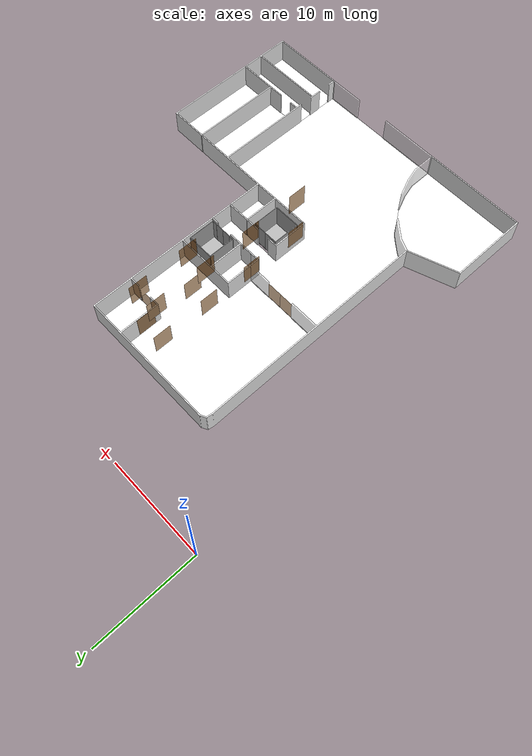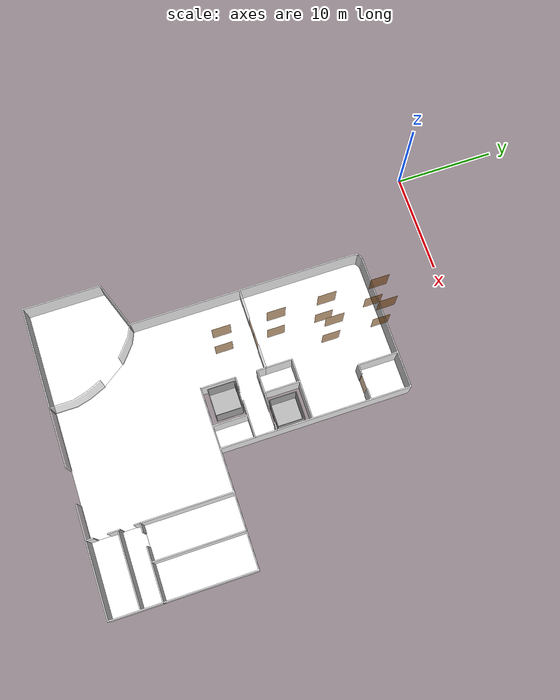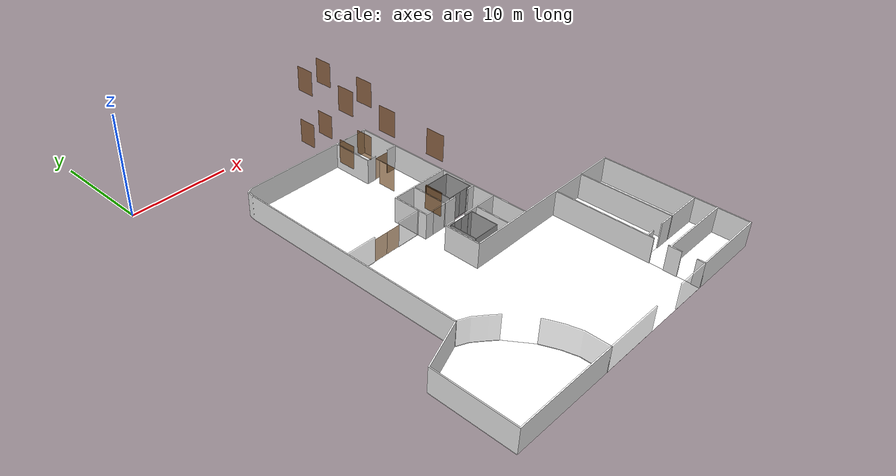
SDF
<sdf version="1.7">
 <world name="world">
  <include><uri>model://sun</uri></include>
  <model name="L1_door2">
   <pose>11.467915973513396 -19.51919626838896 0.0 0 0 3.141592653589793</pose>
   <link name="right">
    <pose>0.7343820334670719 0 1.11 0 0 0</pose>
    <visual name="right_visual">
     <geometry><box><size>1.4587640669341437 0.03 2.2</size></box></geometry>
     <material><ambient>0.5 0.25 0 0.6</ambient><diffuse>0.5 0.25 0 0.6</diffuse></material>
    </visual>
    <collision name="right_collision">
     <geometry><box><size>1.4587640669341437 0.03 2.2</size></box></geometry>
     <surface><contact><collide_bitmask>0x02</collide_bitmask></contact></surface>
    </collision>
    <inertial>
     <mass>50.0</mass>
     <inertia><ixx>20.17041666666667</ixx><iyy>29.033302512409353</iyy><izz>8.87038584574268</izz></inertia>
    </inertial>
   </link>
   <joint name="right_joint" type="prismatic">
    <parent>world</parent>
    <child>right</child>
    <axis>
     <xyz>1 0 0</xyz>
     <limit><lower>0.0</lower><upper>1.4687640669341437</upper><effort>500.0</effort></limit>
    </axis>
   </joint>
   <link name="left">
    <pose>-0.7343820334670719 0 1.11 0 0 0</pose>
    <visual name="left_visual">
     <geometry><box><size>1.4587640669341437 0.03 2.2</size></box></geometry>
     <material><ambient>0.5 0.25 0 0.6</ambient><diffuse>0.5 0.25 0 0.6</diffuse></material>
    </visual>
    <collision name="left_collision">
     <geometry><box><size>1.4587640669341437 0.03 2.2</size></box></geometry>
     <surface><contact><collide_bitmask>0x02</collide_bitmask></contact></surface>
    </collision>
    <inertial>
     <mass>50.0</mass>
     <inertia><ixx>20.17041666666667</ixx><iyy>29.033302512409353</iyy><izz>8.87038584574268</izz></inertia>
    </inertial>
   </link>
   <joint name="left_joint" type="prismatic">
    <parent>world</parent>
    <child>left</child>
    <axis>
     <xyz>1 0 0</xyz>
     <limit><lower>-1.4687640669341437</lower><upper>0.0</upper><effort>500.0</effort></limit>
    </axis>
   </joint>
   <plugin name="double_sliding_door" filename="libdouble_sliding_door_plugin.so">
    <ros><namespace>/doors/L1_door2</namespace></ros>
    <right_joint>right_joint</right_joint>
    <left_joint>left_joint</left_joint>
    <open_distance>1.3</open_distance>
    <kp>100.0</kp>
    <kd>120.0</kd>
   </plugin>
  </model>
  <model name="L1_door4">
   <pose>19.469095149558022 -11.090452425220999 0.0 0 0 0.0</pose>
   <link name="right">
    <pose>0 0 1.11 0 0 0</pose>
    <visual name="right_visual">
     <geometry><box><size>1.5839752748148876 0.03 2.2</size></box></geometry>
     <material><ambient>0.5 0.25 0 0.6</ambient><diffuse>0.5 0.25 0 0.6</diffuse></material>
    </visual>
    <collision name="right_collision">
     <geometry><box><size>1.5839752748148876 0.03 2.2</size></box></geometry>
     <surface><contact><collide_bitmask>0x02</collide_bitmask></contact></surface>
    </collision>
    <inertial>
     <mass>50.0</mass>
     <inertia><ixx>20.17041666666667</ixx><iyy>30.620740296770418</iyy><izz>10.457823630103746</izz></inertia>
    </inertial>
   </link>
   <joint name="right_joint" type="revolute">
    <parent>world</parent>
    <child>right</child>
    <axis><xyz>0 0 1</xyz><limit><lower>0</lower><upper>1.57</upper></limit></axis>
    <pose>0.7969876374074438 0 0 0 0 0</pose>
   </joint>
   <plugin name="single_hinged_door" filename="libsingle_hinged_door_plugin.so">
    <ros><namespace>/doors/L1_door4</namespace></ros>
    <right_joint>right_joint</right_joint>
    <open_angle>1.57</open_angle>
    <kp>150.0</kp>
    <kd>80.0</kd>
   </plugin>
  </model>
  <include><name>hotel_L1</name><uri>model://hotel_L1</uri></include>
  <model name="L2_door5">
   <pose>13.186126390963905 -17.835334843838613 5.0 0 0 1.5705221665011058</pose>
   <link name="right">
    <pose>0 0 1.11 0 0 0</pose>
    <visual name="right_visual">
     <geometry><box><size>1.6545737934173317 0.03 2.2</size></box></geometry>
     <material><ambient>0.5 0.25 0 0.6</ambient><diffuse>0.5 0.25 0 0.6</diffuse></material>
    </visual>
    <collision name="right_collision">
     <geometry><box><size>1.6545737934173317 0.03 2.2</size></box></geometry>
     <surface><contact><collide_bitmask>0x02</collide_bitmask></contact></surface>
    </collision>
    <inertial>
     <mass>50.0</mass>
     <inertia><ixx>20.17041666666667</ixx><iyy>31.573393491097583</iyy><izz>11.410476824430914</izz></inertia>
    </inertial>
   </link>
   <joint name="right_joint" type="revolute">
    <parent>world</parent>
    <child>right</child>
    <axis><xyz>0 0 -1</xyz><limit><lower>0</lower><upper>1.57</upper></limit></axis>
    <pose>0.8322868967086658 0 0 0 0 0</pose>
   </joint>
   <plugin name="single_hinged_door" filename="libsingle_hinged_door_plugin.so">
    <ros><namespace>/doors/L2_door5</namespace></ros>
    <right_joint>right_joint</right_joint>
    <open_angle>1.57</open_angle>
    <kp>150.0</kp>
    <kd>80.0</kd>
   </plugin>
  </model>
  <model name="L2_door1">
   <pose>13.188712431159534 -8.402750368968526 5.0 0 0 1.5705221665011047</pose>
   <link name="right">
    <pose>0 0 1.11 0 0 0</pose>
    <visual name="right_visual">
     <geometry><box><size>1.6545737934173281 0.03 2.2</size></box></geometry>
     <material><ambient>0.5 0.25 0 0.6</ambient><diffuse>0.5 0.25 0 0.6</diffuse></material>
    </visual>
    <collision name="right_collision">
     <geometry><box><size>1.6545737934173281 0.03 2.2</size></box></geometry>
     <surface><contact><collide_bitmask>0x02</collide_bitmask></contact></surface>
    </collision>
    <inertial>
     <mass>50.0</mass>
     <inertia><ixx>20.17041666666667</ixx><iyy>31.573393491097537</iyy><izz>11.410476824430864</izz></inertia>
    </inertial>
   </link>
   <joint name="right_joint" type="revolute">
    <parent>world</parent>
    <child>right</child>
    <axis><xyz>0 0 -1</xyz><limit><lower>0</lower><upper>1.57</upper></limit></axis>
    <pose>0.8322868967086641 0 0 0 0 0</pose>
   </joint>
   <plugin name="single_hinged_door" filename="libsingle_hinged_door_plugin.so">
    <ros><namespace>/doors/L2_door1</namespace></ros>
    <right_joint>right_joint</right_joint>
    <open_angle>1.57</open_angle>
    <kp>150.0</kp>
    <kd>80.0</kd>
   </plugin>
  </model>
  <model name="L2_door3">
   <pose>13.187388987059418 -13.230014188460865 5.0 0 0 1.5705221665011058</pose>
   <link name="right">
    <pose>0 0 1.11 0 0 0</pose>
    <visual name="right_visual">
     <geometry><box><size>1.6545737934173281 0.03 2.2</size></box></geometry>
     <material><ambient>0.5 0.25 0 0.6</ambient><diffuse>0.5 0.25 0 0.6</diffuse></material>
    </visual>
    <collision name="right_collision">
     <geometry><box><size>1.6545737934173281 0.03 2.2</size></box></geometry>
     <surface><contact><collide_bitmask>0x02</collide_bitmask></contact></surface>
    </collision>
    <inertial>
     <mass>50.0</mass>
     <inertia><ixx>20.17041666666667</ixx><iyy>31.573393491097537</iyy><izz>11.410476824430864</izz></inertia>
    </inertial>
   </link>
   <joint name="right_joint" type="revolute">
    <parent>world</parent>
    <child>right</child>
    <axis><xyz>0 0 -1</xyz><limit><lower>0</lower><upper>1.57</upper></limit></axis>
    <pose>0.8322868967086641 0 0 0 0 0</pose>
   </joint>
   <plugin name="single_hinged_door" filename="libsingle_hinged_door_plugin.so">
    <ros><namespace>/doors/L2_door3</namespace></ros>
    <right_joint>right_joint</right_joint>
    <open_angle>1.57</open_angle>
    <kp>150.0</kp>
    <kd>80.0</kd>
   </plugin>
  </model>
  <model name="L2_door6">
   <pose>13.184757310860334 -22.829056036416894 5.0 0 0 1.5705221665011069</pose>
   <link name="right">
    <pose>0 0 1.11 0 0 0</pose>
    <visual name="right_visual">
     <geometry><box><size>1.6545737934173281 0.03 2.2</size></box></geometry>
     <material><ambient>0.5 0.25 0 0.6</ambient><diffuse>0.5 0.25 0 0.6</diffuse></material>
    </visual>
    <collision name="right_collision">
     <geometry><box><size>1.6545737934173281 0.03 2.2</size></box></geometry>
     <surface><contact><collide_bitmask>0x02</collide_bitmask></contact></surface>
    </collision>
    <inertial>
     <mass>50.0</mass>
     <inertia><ixx>20.17041666666667</ixx><iyy>31.573393491097537</iyy><izz>11.410476824430864</izz></inertia>
    </inertial>
   </link>
   <joint name="right_joint" type="revolute">
    <parent>world</parent>
    <child>right</child>
    <axis><xyz>0 0 -1</xyz><limit><lower>0</lower><upper>1.57</upper></limit></axis>
    <pose>0.8322868967086641 0 0 0 0 0</pose>
   </joint>
   <plugin name="single_hinged_door" filename="libsingle_hinged_door_plugin.so">
    <ros><namespace>/doors/L2_door6</namespace></ros>
    <right_joint>right_joint</right_joint>
    <open_angle>1.57</open_angle>
    <kp>150.0</kp>
    <kd>80.0</kd>
   </plugin>
  </model>
  <model name="L2_door2">
   <pose>15.241686699219496 -8.403313213011105 5.0 0 0 1.5705221665011058</pose>
   <link name="right">
    <pose>0 0 1.11 0 0 0</pose>
    <visual name="right_visual">
     <geometry><box><size>1.654573793417329 0.03 2.2</size></box></geometry>
     <material><ambient>0.5 0.25 0 0.6</ambient><diffuse>0.5 0.25 0 0.6</diffuse></material>
    </visual>
    <collision name="right_collision">
     <geometry><box><size>1.654573793417329 0.03 2.2</size></box></geometry>
     <surface><contact><collide_bitmask>0x02</collide_bitmask></contact></surface>
    </collision>
    <inertial>
     <mass>50.0</mass>
     <inertia><ixx>20.17041666666667</ixx><iyy>31.573393491097548</iyy><izz>11.410476824430877</izz></inertia>
    </inertial>
   </link>
   <joint name="right_joint" type="revolute">
    <parent>world</parent>
    <child>right</child>
    <axis><xyz>0 0 1</xyz><limit><lower>0</lower><upper>1.57</upper></limit></axis>
    <pose>0.8322868967086645 0 0 0 0 0</pose>
   </joint>
   <plugin name="single_hinged_door" filename="libsingle_hinged_door_plugin.so">
    <ros><namespace>/doors/L2_door2</namespace></ros>
    <right_joint>right_joint</right_joint>
    <open_angle>1.57</open_angle>
    <kp>150.0</kp>
    <kd>80.0</kd>
   </plugin>
  </model>
  <model name="L2_door4">
   <pose>15.240363255119378 -13.230577032503442 5.0 0 0 1.5705221665011058</pose>
   <link name="right">
    <pose>0 0 1.11 0 0 0</pose>
    <visual name="right_visual">
     <geometry><box><size>1.6545737934173281 0.03 2.2</size></box></geometry>
     <material><ambient>0.5 0.25 0 0.6</ambient><diffuse>0.5 0.25 0 0.6</diffuse></material>
    </visual>
    <collision name="right_collision">
     <geometry><box><size>1.6545737934173281 0.03 2.2</size></box></geometry>
     <surface><contact><collide_bitmask>0x02</collide_bitmask></contact></surface>
    </collision>
    <inertial>
     <mass>50.0</mass>
     <inertia><ixx>20.17041666666667</ixx><iyy>31.573393491097537</iyy><izz>11.410476824430864</izz></inertia>
    </inertial>
   </link>
   <joint name="right_joint" type="revolute">
    <parent>world</parent>
    <child>right</child>
    <axis><xyz>0 0 1</xyz><limit><lower>0</lower><upper>1.57</upper></limit></axis>
    <pose>0.8322868967086641 0 0 0 0 0</pose>
   </joint>
   <plugin name="single_hinged_door" filename="libsingle_hinged_door_plugin.so">
    <ros><namespace>/doors/L2_door4</namespace></ros>
    <right_joint>right_joint</right_joint>
    <open_angle>1.57</open_angle>
    <kp>150.0</kp>
    <kd>80.0</kd>
   </plugin>
  </model>
  <model name="L3_door5">
   <pose>13.186126390963905 -17.835334843838613 10.0 0 0 1.5705221665011058</pose>
   <link name="right">
    <pose>0 0 1.11 0 0 0</pose>
    <visual name="right_visual">
     <geometry><box><size>1.6545737934173317 0.03 2.2</size></box></geometry>
     <material><ambient>0.5 0.25 0 0.6</ambient><diffuse>0.5 0.25 0 0.6</diffuse></material>
    </visual>
    <collision name="right_collision">
     <geometry><box><size>1.6545737934173317 0.03 2.2</size></box></geometry>
     <surface><contact><collide_bitmask>0x02</collide_bitmask></contact></surface>
    </collision>
    <inertial>
     <mass>50.0</mass>
     <inertia><ixx>20.17041666666667</ixx><iyy>31.573393491097583</iyy><izz>11.410476824430914</izz></inertia>
    </inertial>
   </link>
   <joint name="right_joint" type="revolute">
    <parent>world</parent>
    <child>right</child>
    <axis><xyz>0 0 -1</xyz><limit><lower>0</lower><upper>1.57</upper></limit></axis>
    <pose>0.8322868967086658 0 0 0 0 0</pose>
   </joint>
   <plugin name="single_hinged_door" filename="libsingle_hinged_door_plugin.so">
    <ros><namespace>/doors/L3_door5</namespace></ros>
    <right_joint>right_joint</right_joint>
    <open_angle>1.57</open_angle>
    <kp>150.0</kp>
    <kd>80.0</kd>
   </plugin>
  </model>
  <model name="L3_door1">
   <pose>13.188712431159534 -8.402750368968526 10.0 0 0 1.5705221665011047</pose>
   <link name="right">
    <pose>0 0 1.11 0 0 0</pose>
    <visual name="right_visual">
     <geometry><box><size>1.6545737934173281 0.03 2.2</size></box></geometry>
     <material><ambient>0.5 0.25 0 0.6</ambient><diffuse>0.5 0.25 0 0.6</diffuse></material>
    </visual>
    <collision name="right_collision">
     <geometry><box><size>1.6545737934173281 0.03 2.2</size></box></geometry>
     <surface><contact><collide_bitmask>0x02</collide_bitmask></contact></surface>
    </collision>
    <inertial>
     <mass>50.0</mass>
     <inertia><ixx>20.17041666666667</ixx><iyy>31.573393491097537</iyy><izz>11.410476824430864</izz></inertia>
    </inertial>
   </link>
   <joint name="right_joint" type="revolute">
    <parent>world</parent>
    <child>right</child>
    <axis><xyz>0 0 -1</xyz><limit><lower>0</lower><upper>1.57</upper></limit></axis>
    <pose>0.8322868967086641 0 0 0 0 0</pose>
   </joint>
   <plugin name="single_hinged_door" filename="libsingle_hinged_door_plugin.so">
    <ros><namespace>/doors/L3_door1</namespace></ros>
    <right_joint>right_joint</right_joint>
    <open_angle>1.57</open_angle>
    <kp>150.0</kp>
    <kd>80.0</kd>
   </plugin>
  </model>
  <model name="L3_door6">
   <pose>13.184772522861486 -22.773570245388242 10.0 0 0 1.5705221665011058</pose>
   <link name="right">
    <pose>0 0 1.11 0 0 0</pose>
    <visual name="right_visual">
     <geometry><box><size>1.6545737934173281 0.03 2.2</size></box></geometry>
     <material><ambient>0.5 0.25 0 0.6</ambient><diffuse>0.5 0.25 0 0.6</diffuse></material>
    </visual>
    <collision name="right_collision">
     <geometry><box><size>1.6545737934173281 0.03 2.2</size></box></geometry>
     <surface><contact><collide_bitmask>0x02</collide_bitmask></contact></surface>
    </collision>
    <inertial>
     <mass>50.0</mass>
     <inertia><ixx>20.17041666666667</ixx><iyy>31.573393491097537</iyy><izz>11.410476824430864</izz></inertia>
    </inertial>
   </link>
   <joint name="right_joint" type="revolute">
    <parent>world</parent>
    <child>right</child>
    <axis><xyz>0 0 -1</xyz><limit><lower>0</lower><upper>1.57</upper></limit></axis>
    <pose>0.8322868967086641 0 0 0 0 0</pose>
   </joint>
   <plugin name="single_hinged_door" filename="libsingle_hinged_door_plugin.so">
    <ros><namespace>/doors/L3_door6</namespace></ros>
    <right_joint>right_joint</right_joint>
    <open_angle>1.57</open_angle>
    <kp>150.0</kp>
    <kd>80.0</kd>
   </plugin>
  </model>
  <model name="L3_door3">
   <pose>13.187388987059418 -13.230014188460865 10.0 0 0 1.5705221665011058</pose>
   <link name="right">
    <pose>0 0 1.11 0 0 0</pose>
    <visual name="right_visual">
     <geometry><box><size>1.6545737934173281 0.03 2.2</size></box></geometry>
     <material><ambient>0.5 0.25 0 0.6</ambient><diffuse>0.5 0.25 0 0.6</diffuse></material>
    </visual>
    <collision name="right_collision">
     <geometry><box><size>1.6545737934173281 0.03 2.2</size></box></geometry>
     <surface><contact><collide_bitmask>0x02</collide_bitmask></contact></surface>
    </collision>
    <inertial>
     <mass>50.0</mass>
     <inertia><ixx>20.17041666666667</ixx><iyy>31.573393491097537</iyy><izz>11.410476824430864</izz></inertia>
    </inertial>
   </link>
   <joint name="right_joint" type="revolute">
    <parent>world</parent>
    <child>right</child>
    <axis><xyz>0 0 -1</xyz><limit><lower>0</lower><upper>1.57</upper></limit></axis>
    <pose>0.8322868967086641 0 0 0 0 0</pose>
   </joint>
   <plugin name="single_hinged_door" filename="libsingle_hinged_door_plugin.so">
    <ros><namespace>/doors/L3_door3</namespace></ros>
    <right_joint>right_joint</right_joint>
    <open_angle>1.57</open_angle>
    <kp>150.0</kp>
    <kd>80.0</kd>
   </plugin>
  </model>
  <model name="L3_door4">
   <pose>15.240363255119378 -13.230577032503442 10.0 0 0 1.5705221665011058</pose>
   <link name="right">
    <pose>0 0 1.11 0 0 0</pose>
    <visual name="right_visual">
     <geometry><box><size>1.6545737934173281 0.03 2.2</size></box></geometry>
     <material><ambient>0.5 0.25 0 0.6</ambient><diffuse>0.5 0.25 0 0.6</diffuse></material>
    </visual>
    <collision name="right_collision">
     <geometry><box><size>1.6545737934173281 0.03 2.2</size></box></geometry>
     <surface><contact><collide_bitmask>0x02</collide_bitmask></contact></surface>
    </collision>
    <inertial>
     <mass>50.0</mass>
     <inertia><ixx>20.17041666666667</ixx><iyy>31.573393491097537</iyy><izz>11.410476824430864</izz></inertia>
    </inertial>
   </link>
   <joint name="right_joint" type="revolute">
    <parent>world</parent>
    <child>right</child>
    <axis><xyz>0 0 1</xyz><limit><lower>0</lower><upper>1.57</upper></limit></axis>
    <pose>0.8322868967086641 0 0 0 0 0</pose>
   </joint>
   <plugin name="single_hinged_door" filename="libsingle_hinged_door_plugin.so">
    <ros><namespace>/doors/L3_door4</namespace></ros>
    <right_joint>right_joint</right_joint>
    <open_angle>1.57</open_angle>
    <kp>150.0</kp>
    <kd>80.0</kd>
   </plugin>
  </model>
  <model name="L3_door2">
   <pose>15.241686699219496 -8.403313213011105 10.0 0 0 1.5705221665011058</pose>
   <link name="right">
    <pose>0 0 1.11 0 0 0</pose>
    <visual name="right_visual">
     <geometry><box><size>1.654573793417329 0.03 2.2</size></box></geometry>
     <material><ambient>0.5 0.25 0 0.6</ambient><diffuse>0.5 0.25 0 0.6</diffuse></material>
    </visual>
    <collision name="right_collision">
     <geometry><box><size>1.654573793417329 0.03 2.2</size></box></geometry>
     <surface><contact><collide_bitmask>0x02</collide_bitmask></contact></surface>
    </collision>
    <inertial>
     <mass>50.0</mass>
     <inertia><ixx>20.17041666666667</ixx><iyy>31.573393491097548</iyy><izz>11.410476824430877</izz></inertia>
    </inertial>
   </link>
   <joint name="right_joint" type="revolute">
    <parent>world</parent>
    <child>right</child>
    <axis><xyz>0 0 1</xyz><limit><lower>0</lower><upper>1.57</upper></limit></axis>
    <pose>0.8322868967086645 0 0 0 0 0</pose>
   </joint>
   <plugin name="single_hinged_door" filename="libsingle_hinged_door_plugin.so">
    <ros><namespace>/doors/L3_door2</namespace></ros>
    <right_joint>right_joint</right_joint>
    <open_angle>1.57</open_angle>
    <kp>150.0</kp>
    <kd>80.0</kd>
   </plugin>
  </model>
  <model name="Lift1">
   <link name="platform">
    <gravity>false</gravity>
    <inertial>
     <mass>1200</mass>
     <inertia><ixx>729.2500000000001</ixx><iyy>729.2500000000001</iyy><izz>1458.0000000000002</izz></inertia>
    </inertial>
    <visual name="floor_visual">
     <pose>0 0 -0.025 0 0 0</pose>
     <geometry><box><size>2.7 2.7 0.05</size></box></geometry>
     <material>
      <ambient>0.5 0.5 0.5 1</ambient>
      <diffuse>0.7 0.7 0.7 1</diffuse>
      <specular>0.6 0.6 0.6 1</specular>
      <emissive>0.1 0.1 0.1 1</emissive>
     </material>
    </visual>
    <collision name="floor_collision">
     <pose>0 0 -0.025 0 0 0</pose>
     <geometry><box><size>2.7 2.7 0.05</size></box></geometry>
     <surface><contact><collide_bitmask>0x01</collide_bitmask></contact></surface>
    </collision>
    <visual name="frontwall1_visual">
     <pose>0.0 1.3250000000000002 1.25 0 0 0</pose>
     <geometry><box><size>2.7 0.05 2.5</size></box></geometry>
     <material>
      <ambient>0.5 0.5 0.5 1</ambient>
      <diffuse>0.7 0.7 0.7 1</diffuse>
      <specular>0.6 0.6 0.6 1</specular>
      <emissive>0.1 0.1 0.1 1</emissive>
     </material>
    </visual>
    <collision name="frontwall1_collision">
     <pose>0.0 1.3250000000000002 1.25 0 0 0</pose>
     <geometry><box><size>2.7 0.05 2.5</size></box></geometry>
     <surface><contact><collide_bitmask>0x01</collide_bitmask></contact></surface>
    </collision>
    <visual name="backwall1_visual">
     <pose>-1.1 -1.3250000000000002 1.25 0 0 0</pose>
     <geometry><box><size>0.5000000000000001 0.05 2.5</size></box></geometry>
     <material>
      <ambient>0.5 0.5 0.5 1</ambient>
      <diffuse>0.7 0.7 0.7 1</diffuse>
      <specular>0.6 0.6 0.6 1</specular>
      <emissive>0.1 0.1 0.1 1</emissive>
     </material>
    </visual>
    <collision name="backwall1_collision">
     <pose>-1.1 -1.3250000000000002 1.25 0 0 0</pose>
     <geometry><box><size>0.5000000000000001 0.05 2.5</size></box></geometry>
     <surface><contact><collide_bitmask>0x01</collide_bitmask></contact></surface>
    </collision>
    <visual name="backwall2_visual">
     <pose>1.1 -1.3250000000000002 1.25 0 0 0</pose>
     <geometry><box><size>0.5000000000000001 0.05 2.5</size></box></geometry>
     <material>
      <ambient>0.5 0.5 0.5 1</ambient>
      <diffuse>0.7 0.7 0.7 1</diffuse>
      <specular>0.6 0.6 0.6 1</specular>
      <emissive>0.1 0.1 0.1 1</emissive>
     </material>
    </visual>
    <collision name="backwall2_collision">
     <pose>1.1 -1.3250000000000002 1.25 0 0 0</pose>
     <geometry><box><size>0.5000000000000001 0.05 2.5</size></box></geometry>
     <surface><contact><collide_bitmask>0x01</collide_bitmask></contact></surface>
    </collision>
    <visual name="leftwall1_visual">
     <pose>-1.3250000000000002 0.0 1.25 0 0 1.5707963267948966</pose>
     <geometry><box><size>2.6 0.05 2.5</size></box></geometry>
     <material>
      <ambient>0.5 0.5 0.5 1</ambient>
      <diffuse>0.7 0.7 0.7 1</diffuse>
      <specular>0.6 0.6 0.6 1</specular>
      <emissive>0.1 0.1 0.1 1</emissive>
     </material>
    </visual>
    <collision name="leftwall1_collision">
     <pose>-1.3250000000000002 0.0 1.25 0 0 1.5707963267948966</pose>
     <geometry><box><size>2.6 0.05 2.5</size></box></geometry>
     <surface><contact><collide_bitmask>0x01</collide_bitmask></contact></surface>
    </collision>
    <visual name="rightwall1_visual">
     <pose>1.3250000000000002 0.0 1.25 0 0 1.5707963267948966</pose>
     <geometry><box><size>2.6 0.05 2.5</size></box></geometry>
     <material>
      <ambient>0.5 0.5 0.5 1</ambient>
      <diffuse>0.7 0.7 0.7 1</diffuse>
      <specular>0.6 0.6 0.6 1</specular>
      <emissive>0.1 0.1 0.1 1</emissive>
     </material>
    </visual>
    <collision name="rightwall1_collision">
     <pose>1.3250000000000002 0.0 1.25 0 0 1.5707963267948966</pose>
     <geometry><box><size>2.6 0.05 2.5</size></box></geometry>
     <surface><contact><collide_bitmask>0x01</collide_bitmask></contact></surface>
    </collision>
   </link>
   <link name="ramp_plate">
    <pose>0.05  -0.90  -0.02   0 0 0</pose>
    <inertial><mass>5.0</mass><inertia><ixx>0.2</ixx><iyy>0.3</iyy><izz>0.3</izz></inertia></inertial>
    <collision name="col">
     <geometry><box><size>1.8 0.75 0.03</size></box></geometry>
     <surface>
      <friction><ode><mu>1.2</mu><mu2>1.2</mu2></ode></friction>
      <bounce><restitution_coefficient>0.0</restitution_coefficient></bounce>
     </surface>
    </collision>
    <visual name="vis">
     <geometry><box><size>1.8 0.75 0.03</size></box></geometry>
     <material>
      <script><uri>file://media/materials/scripts/gazebo.material</uri><name>Gazebo/Black</name></script>
     </material>
    </visual>
    <gravity>false</gravity>
   </link>
   <joint name="ramp_slide_joint" type="prismatic">
    <parent>platform</parent>
    <child>ramp_plate</child>
    <axis>
     <xyz>0 -1 0</xyz>
     <limit><lower>-0.01</lower><upper>0.35</upper><effort>1e5</effort><velocity>1.0</velocity></limit>
     <dynamics damping="50.0" friction="1.0"/>
    </axis>
   </joint>
   <joint name="cabin_joint" type="prismatic">
    <parent>world</parent>
    <child>platform</child>
    <axis>
     <xyz>0 0 1</xyz>
     <limit><lower>0.0</lower><upper>16.0</upper><effort>1e6</effort></limit>
     <dynamics damping="80.0" friction="1.0"/>
    </axis>
   </joint>
   <link name="right_door">
    <pose>0.425 -1.3250000000000002 1.25 0 0 0</pose>
    <visual name="right_door_visual">
     <geometry><box><size>0.85 0.03 2.5</size></box></geometry>
     <material>
      <ambient>0.5 0.5 0.5 1</ambient>
      <diffuse>0.7 0.7 0.7 1</diffuse>
      <specular>0.6 0.6 0.6 1</specular>
      <emissive>0.1 0.1 0.1 1</emissive>
     </material>
    </visual>
    <collision name="right_door_collision">
     <geometry><box><size>0.85 0.03 2.5</size></box></geometry>
     <surface><contact><collide_bitmask>0x02</collide_bitmask></contact></surface>
    </collision>
   </link>
   <joint name="right_joint" type="prismatic">
    <parent>platform</parent>
    <child>right_door</child>
    <axis><xyz>1 0 0</xyz><limit><lower>0</lower><upper>0.85</upper></limit><dynamics damping="10.0"/></axis>
   </joint>
   <link name="left_door">
    <pose>-0.425 -1.3250000000000002 1.25 0 0 0</pose>
    <visual name="left_door_visual">
     <geometry><box><size>0.85 0.03 2.5</size></box></geometry>
     <material>
      <ambient>0.5 0.5 0.5 1</ambient>
      <diffuse>0.7 0.7 0.7 1</diffuse>
      <specular>0.6 0.6 0.6 1</specular>
      <emissive>0.1 0.1 0.1 1</emissive>
     </material>
    </visual>
    <collision name="left_door_collision">
     <geometry><box><size>0.85 0.03 2.5</size></box></geometry>
     <surface><contact><collide_bitmask>0x02</collide_bitmask></contact></surface>
    </collision>
   </link>
   <joint name="left_joint" type="prismatic">
    <parent>platform</parent>
    <child>left_door</child>
    <axis><xyz>1 0 0</xyz><limit><lower>-0.85</lower><upper>0</upper></limit><dynamics damping="10.0"/></axis>
   </joint>
   <plugin name="lift1_elevator_plugin" filename="libelevator_plugin.so">
    <ros><namespace>/lift1</namespace></ros>
    <cabin_joint>cabin_joint</cabin_joint>
    <right_joint>right_joint</right_joint>
    <left_joint>left_joint</left_joint>
    <floor_heights>0.0 5.0 10.0</floor_heights>
    <door_open_distance>0.85</door_open_distance>
    <kp>300.0</kp>
    <kd>120.0</kd>
    <vel_limit>0.6</vel_limit>
    <acc_limit>1.0</acc_limit>
    <pos_tolerance>0.007</pos_tolerance>
    <pos_tolerance_hyst>0.018</pos_tolerance_hyst>
    <kv_hold>250.0</kv_hold>
    <kd_hold>5.0</kd_hold>
    <kp_hold_force>9000.0</kp_hold_force>
    <c_hold_force>13000.0</c_hold_force>
    <ramp_slide_joint>ramp_slide_joint</ramp_slide_joint>
    <ramp_extend>0.55</ramp_extend>
    <ramp_retract>0.0</ramp_retract>
    <ramp_speed>0.4</ramp_speed>
   </plugin>
   <pose>19.686012 -18.891825 0 0 0 0.0</pose>
  </model>
  <model name="Lift2">
   <link name="platform">
    <gravity>false</gravity>
    <inertial>
     <mass>1200</mass>
     <inertia><ixx>729.2500000000001</ixx><iyy>729.2500000000001</iyy><izz>1458.0000000000002</izz></inertia>
    </inertial>
    <visual name="floor_visual">
     <pose>0 0 -0.025 0 0 0</pose>
     <geometry><box><size>2.7 2.7 0.05</size></box></geometry>
     <material>
      <ambient>0.5 0.5 0.5 1</ambient>
      <diffuse>0.7 0.7 0.7 1</diffuse>
      <specular>0.6 0.6 0.6 1</specular>
      <emissive>0.1 0.1 0.1 1</emissive>
     </material>
    </visual>
    <collision name="floor_collision">
     <pose>0 0 -0.025 0 0 0</pose>
     <geometry><box><size>2.7 2.7 0.05</size></box></geometry>
     <surface><contact><collide_bitmask>0x01</collide_bitmask></contact></surface>
    </collision>
    <visual name="frontwall1_visual">
     <pose>-1.1 1.3250000000000002 1.25 0 0 0</pose>
     <geometry><box><size>0.5000000000000001 0.05 2.5</size></box></geometry>
     <material>
      <ambient>0.5 0.5 0.5 1</ambient>
      <diffuse>0.7 0.7 0.7 1</diffuse>
      <specular>0.6 0.6 0.6 1</specular>
      <emissive>0.1 0.1 0.1 1</emissive>
     </material>
    </visual>
    <collision name="frontwall1_collision">
     <pose>-1.1 1.3250000000000002 1.25 0 0 0</pose>
     <geometry><box><size>0.5000000000000001 0.05 2.5</size></box></geometry>
     <surface><contact><collide_bitmask>0x01</collide_bitmask></contact></surface>
    </collision>
    <visual name="frontwall2_visual">
     <pose>1.1 1.3250000000000002 1.25 0 0 0</pose>
     <geometry><box><size>0.5000000000000001 0.05 2.5</size></box></geometry>
     <material>
      <ambient>0.5 0.5 0.5 1</ambient>
      <diffuse>0.7 0.7 0.7 1</diffuse>
      <specular>0.6 0.6 0.6 1</specular>
      <emissive>0.1 0.1 0.1 1</emissive>
     </material>
    </visual>
    <collision name="frontwall2_collision">
     <pose>1.1 1.3250000000000002 1.25 0 0 0</pose>
     <geometry><box><size>0.5000000000000001 0.05 2.5</size></box></geometry>
     <surface><contact><collide_bitmask>0x01</collide_bitmask></contact></surface>
    </collision>
    <visual name="backwall1_visual">
     <pose>0.0 -1.3250000000000002 1.25 0 0 0</pose>
     <geometry><box><size>2.7 0.05 2.5</size></box></geometry>
     <material>
      <ambient>0.5 0.5 0.5 1</ambient>
      <diffuse>0.7 0.7 0.7 1</diffuse>
      <specular>0.6 0.6 0.6 1</specular>
      <emissive>0.1 0.1 0.1 1</emissive>
     </material>
    </visual>
    <collision name="backwall1_collision">
     <pose>0.0 -1.3250000000000002 1.25 0 0 0</pose>
     <geometry><box><size>2.7 0.05 2.5</size></box></geometry>
     <surface><contact><collide_bitmask>0x01</collide_bitmask></contact></surface>
    </collision>
    <visual name="leftwall1_visual">
     <pose>-1.3250000000000002 0.0 1.25 0 0 1.5707963267948966</pose>
     <geometry><box><size>2.6 0.05 2.5</size></box></geometry>
     <material>
      <ambient>0.5 0.5 0.5 1</ambient>
      <diffuse>0.7 0.7 0.7 1</diffuse>
      <specular>0.6 0.6 0.6 1</specular>
      <emissive>0.1 0.1 0.1 1</emissive>
     </material>
    </visual>
    <collision name="leftwall1_collision">
     <pose>-1.3250000000000002 0.0 1.25 0 0 1.5707963267948966</pose>
     <geometry><box><size>2.6 0.05 2.5</size></box></geometry>
     <surface><contact><collide_bitmask>0x01</collide_bitmask></contact></surface>
    </collision>
    <visual name="rightwall1_visual">
     <pose>1.3250000000000002 0.0 1.25 0 0 1.5707963267948966</pose>
     <geometry><box><size>2.6 0.05 2.5</size></box></geometry>
     <material>
      <ambient>0.5 0.5 0.5 1</ambient>
      <diffuse>0.7 0.7 0.7 1</diffuse>
      <specular>0.6 0.6 0.6 1</specular>
      <emissive>0.1 0.1 0.1 1</emissive>
     </material>
    </visual>
    <collision name="rightwall1_collision">
     <pose>1.3250000000000002 0.0 1.25 0 0 1.5707963267948966</pose>
     <geometry><box><size>2.6 0.05 2.5</size></box></geometry>
     <surface><contact><collide_bitmask>0x01</collide_bitmask></contact></surface>
    </collision>
   </link>
   <link name="ramp_plate">
    <pose>0.03  0.90  -0.02   0 0 0</pose>
    <inertial><mass>5.0</mass><inertia><ixx>0.2</ixx><iyy>0.3</iyy><izz>0.3</izz></inertia></inertial>
    <collision name="col">
     <geometry><box><size>1.8 0.75 0.03</size></box></geometry>
     <surface>
      <friction><ode><mu>1.2</mu><mu2>1.2</mu2></ode></friction>
      <bounce><restitution_coefficient>0.0</restitution_coefficient></bounce>
     </surface>
    </collision>
    <visual name="vis">
     <geometry><box><size>1.80 0.75 0.03</size></box></geometry>
     <material>
      <script><uri>file://media/materials/scripts/gazebo.material</uri><name>Gazebo/Black</name></script>
     </material>
    </visual>
    <gravity>false</gravity>
   </link>
   <joint name="ramp_slide_joint" type="prismatic">
    <parent>platform</parent>
    <child>ramp_plate</child>
    <axis>
     <xyz>0 1 0</xyz>
     <limit><lower>-0.01</lower><upper>0.35</upper><effort>1e5</effort><velocity>1.0</velocity></limit>
     <dynamics damping="50.0" friction="1.0"/>
    </axis>
   </joint>
   <joint name="cabin_joint" type="prismatic">
    <parent>world</parent>
    <child>platform</child>
    <axis>
     <xyz>0 0 1</xyz>
     <limit><lower>0.0</lower><upper>16.0</upper><effort>1e6</effort></limit>
     <dynamics damping="80.0" friction="1.0"/>
    </axis>
   </joint>
   <link name="right_door">
    <pose>0.425 1.3250000000000002 1.25 0 0 0</pose>
    <visual name="right_door_visual">
     <geometry><box><size>0.85 0.03 2.5</size></box></geometry>
     <material>
      <ambient>0.5 0.5 0.5 1</ambient>
      <diffuse>0.7 0.7 0.7 1</diffuse>
      <specular>0.6 0.6 0.6 1</specular>
      <emissive>0.1 0.1 0.1 1</emissive>
     </material>
    </visual>
    <collision name="right_door_collision">
     <geometry><box><size>0.85 0.03 2.5</size></box></geometry>
     <surface><contact><collide_bitmask>0x02</collide_bitmask></contact></surface>
    </collision>
   </link>
   <joint name="right_joint" type="prismatic">
    <parent>platform</parent>
    <child>right_door</child>
    <axis><xyz>1 0 0</xyz><limit><lower>0</lower><upper>0.85</upper></limit><dynamics damping="10.0"/></axis>
   </joint>
   <link name="left_door">
    <pose>-0.425 1.3250000000000002 1.25 0 0 0</pose>
    <visual name="left_door_visual">
     <geometry><box><size>0.85 0.03 2.5</size></box></geometry>
     <material>
      <ambient>0.5 0.5 0.5 1</ambient>
      <diffuse>0.7 0.7 0.7 1</diffuse>
      <specular>0.6 0.6 0.6 1</specular>
      <emissive>0.1 0.1 0.1 1</emissive>
     </material>
    </visual>
    <collision name="left_door_collision">
     <geometry><box><size>0.85 0.03 2.5</size></box></geometry>
     <surface><contact><collide_bitmask>0x02</collide_bitmask></contact></surface>
    </collision>
   </link>
   <joint name="left_joint" type="prismatic">
    <parent>platform</parent>
    <child>left_door</child>
    <axis><xyz>1 0 0</xyz><limit><lower>-0.85</lower><upper>0</upper></limit><dynamics damping="10.0"/></axis>
   </joint>
   <pose>16.880 -24.103928 0 0 0 0.0</pose>
   <plugin name="lift2_elevator_plugin" filename="libelevator_plugin.so">
    <ros><namespace>/lift2</namespace></ros>
    <cabin_joint>cabin_joint</cabin_joint>
    <right_joint>right_joint</right_joint>
    <left_joint>left_joint</left_joint>
    <floor_heights>0.0 5.0 10.0</floor_heights>
    <door_open_distance>0.85</door_open_distance>
    <kp>300.0</kp>
    <kd>120.0</kd>
    <vel_limit>0.6</vel_limit>
    <acc_limit>1.0</acc_limit>
    <pos_tolerance>0.007</pos_tolerance>
    <pos_tolerance_hyst>0.018</pos_tolerance_hyst>
    <kv_hold>250.0</kv_hold>
    <kd_hold>5.0</kd_hold>
    <kp_hold_force>9000.0</kp_hold_force>
    <c_hold_force>13000.0</c_hold_force>
    <ramp_slide_joint>ramp_slide_joint</ramp_slide_joint>
    <ramp_extend>0.55</ramp_extend>
    <ramp_retract>0.0</ramp_retract>
    <ramp_speed>0.4</ramp_speed>
   </plugin>
  </model>
 </world>
</sdf>
